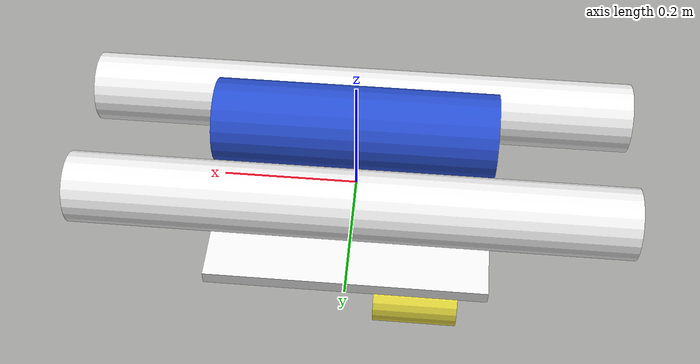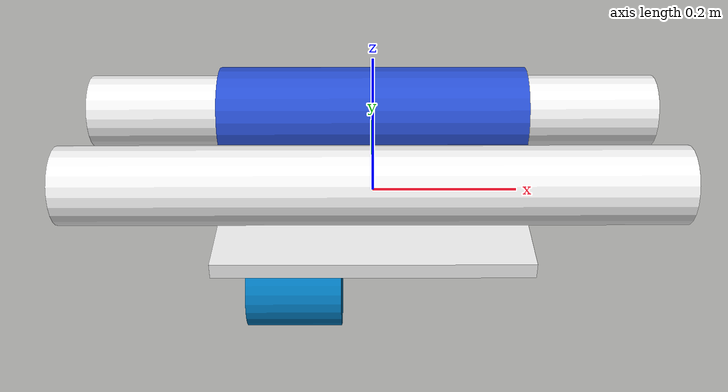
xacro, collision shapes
<?xml version="1.0"?>
<!-- Revolute-Revolute Manipulator -->
<robot name="auv" xmlns:xacro="http://www.ros.org/wiki/xacro">

    <!-- Constants for robot dimensions -->
    <xacro:property name="PI" value="3.1415926535897931"/>
    <xacro:property name="board_mass" value="0.5" />
    <xacro:property name="board_width" value="0.4" />
    <xacro:property name="board_thickness" value="0.02" />
    <xacro:property name="bouy_mass" value="0.3" />
    <xacro:property name="bouy_length" value="0.8" />
    <xacro:property name="bouy_radius" value="0.051" />
    <xacro:property name="bouy_i_radius" value="0.05" />
    <xacro:property name="thruster_mass" value="0.1" />
    <xacro:property name="thruster_length" value="0.12" />
    <xacro:property name="thruster_radius" value="0.045" />
    <xacro:property name="sensor_box_mass" value="0.5" />
    <xacro:property name="sensor_box_length" value="0.4" />
    <xacro:property name="sensor_box_radius" value="0.06" />

    <!-- Import all Gazebo-customization elements, including Gazebo colors -->
    <!--xacro:include filename="materials.xacro" /-->

    <!-- macro for bouys -->
    <xacro:macro name="bouy" params="position">
        <link name="${position}_bouy_link">
            <collision>
                <origin xyz="0 0 0" rpy="0 ${PI/2} 0"/>
                <geometry>
                    <cylinder length="${bouy_length}" radius="${bouy_radius}"/>
                </geometry>
            </collision>

            <visual>
                <origin xyz="0 0 0" rpy="0 ${PI/2}  0"/>
                <geometry>
                    <cylinder length="${bouy_length}" radius="${bouy_radius}"/>
                </geometry>
                <material name="white"/>
            </visual>

            <inertial>
                <mass value="${bouy_mass}"/>
                <inertia
                    ixx="${bouy_mass / 12.0 * (3*(bouy_radius*bouy_radius + bouy_i_radius*bouy_i_radius) + bouy_length*bouy_length)}" ixy="0.0" ixz="0.0"
                    iyy="${bouy_mass / 12.0 * (3*(bouy_radius*bouy_radius + bouy_i_radius*bouy_i_radius) + bouy_length*bouy_length)}" iyz="0.0"
                    izz="${bouy_mass / 12.0 * 3*(bouy_radius*bouy_radius + bouy_i_radius*bouy_i_radius)}"/>
            </inertial>
        </link>
    </xacro:macro>

    <!-- macro for thrusters -->
    <xacro:macro name="thruster" params="position">
        <link name="${position}_thruster_link">
            <collision>
                <origin xyz="0.1 ${thruster_radius} ${-1*thruster_radius} " rpy="0 ${PI/2} 0"/>
                <geometry>
                    <cylinder length="${thruster_length}" radius="${thruster_radius}"/>
                </geometry>
            </collision>

            <visual>
                <origin xyz="0 0 0" rpy="0 ${PI/2} 0"/>
                <geometry>
                    <mesh filename="package://auv_ros_description/meshes/T200-THRUSTER-BLUEESC-R1.dae"
                        scale="0.001 0.001 0.001"/>
                </geometry>
            </visual>

            <inertial>
                <origin xyz="0 0 0" rpy="0 ${PI/2} 0"/>
                <mass value="${thruster_mass}"/>
                <inertia
                    ixx="${thruster_mass / 12.0 * (3*thruster_radius*thruster_radius + thruster_length*thruster_length)}" ixy="0.0" ixz="0.0"
                    iyy="${thruster_mass / 12.0 * (3*thruster_radius*thruster_radius + thruster_length*thruster_length)}" iyz="0.0"
                    izz="${thruster_mass / 2.0 * thruster_radius*thruster_radius}"/>
            </inertial>
        </link>
    </xacro:macro>

    <!-- Used for fixing robot to Gazebo 'base_link' -->

    <!-- Base Link -->
    <link name="base_link">
        <collision>
            <origin xyz="0 0 ${board_thickness/2}" rpy="0 0 0"/>
            <geometry>
                <box size="${board_width} ${board_width} ${board_thickness}"/>
            </geometry>
        </collision>

        <visual>
            <origin xyz="0 0 ${board_thickness/2}" rpy="0 0 0"/>
            <geometry>
                <box size="${board_width} ${board_width} ${board_thickness}"/>
            </geometry>
            <material name="white"/>
        </visual>

        <inertial>
            <origin xyz="0 0 ${board_thickness/2}" rpy="0 0 0"/>
            <mass value="${board_mass}"/>
            <inertia
                ixx="${board_mass / 12.0 * (board_width*board_width + board_thickness*board_thickness)}" ixy="0.0" ixz="0.0"
                iyy="${board_mass / 12.0 * (board_thickness*board_thickness + board_width*board_width)}" iyz="0.0"
                izz="${board_mass / 12.0 * (board_width*board_width + board_width*board_width)}"/>
        </inertial>
    </link>

    <!-- left bouy joint -->
    <joint name="left_bouy_joint" type="fixed">
        <parent link="base_link"/>
        <child link="left_bouy_link"/>
        <origin xyz="0 ${board_width/4} ${board_thickness + bouy_radius}" rpy="0 0 0"/>
    </joint>

    <!-- left bouy Link -->
    <xacro:bouy position="left"/>

    <!-- right bouy joint -->
    <joint name="right_bouy_joint" type="fixed">
        <parent link="base_link"/>
        <child link="right_bouy_link"/>
        <origin xyz="0 ${-1*board_width/4} ${board_thickness + bouy_radius}" rpy="0 0 0"/>
    </joint>

    <!-- right bouy Link -->
    <xacro:bouy position="right"/>

    <!-- left thruster joint -->
    <joint name="left_thruster_joint" type="fixed">
        <axis xyz="1 0 0" />
        <parent link="base_link"/>
        <child link="left_thruster_link"/>
        <origin xyz="${-1*board_width/2} ${board_width/2-2*thruster_radius} ${-0.5*board_thickness-2*thruster_radius}" rpy="${PI/2} 0 0"/>
    </joint>

    <!-- left thruster Link -->
    <xacro:thruster position="left"/>

    <!-- right thruster joint -->
    <joint name="right_thruster_joint" type="fixed">
        <axis xyz="1 0 0" />
        <parent link="base_link"/>
        <child link="right_thruster_link"/>
        <origin xyz="${-1*board_width/2} ${-1*board_width/2} ${-0.5*board_thickness-2*thruster_radius}" rpy="${PI/2} 0 0"/>
    </joint>

    <!-- right thruster Link -->
    <xacro:thruster position="right"/>

    <!-- sensor box joint-->
    <joint name="sensor_box_joint" type="fixed">
        <parent link="base_link"/>
        <child link="sensor_box_link"/>
        <origin xyz="0 0 ${board_thickness + 2*bouy_radius}" rpy="0 0 0"/>
    </joint>

    <!-- sensor box -->
    <link name="sensor_box_link">
        <collision>
            <origin xyz="0 0 0" rpy="0 ${PI/2} 0"/>
            <geometry>
                <cylinder length="${sensor_box_length}" radius="${sensor_box_radius}"/>
            </geometry>
        </collision>

        <visual>
            <origin xyz="0 0 0" rpy="0 ${PI/2} 0"/>
            <geometry>
                <cylinder length="${sensor_box_length}" radius="${sensor_box_radius}"/>
            </geometry>
            <material name="blue"/>
        </visual>

        <inertial>
            <origin xyz="0 0 0" rpy="0 ${PI/2} 0"/>
            <mass value="${sensor_box_mass}"/>
            <inertia
                ixx="${sensor_box_mass / 12.0 * (3*sensor_box_radius*sensor_box_radius + sensor_box_length*sensor_box_length)}" ixy="0.0" ixz="0.0"
                iyy="${sensor_box_mass / 12.0 * (3*sensor_box_radius*sensor_box_radius + sensor_box_length*sensor_box_length)}" iyz="0.0"
                izz="${sensor_box_mass / 2.0 * sensor_box_radius*sensor_box_radius}"/>
        </inertial>
    </link>
</robot>
